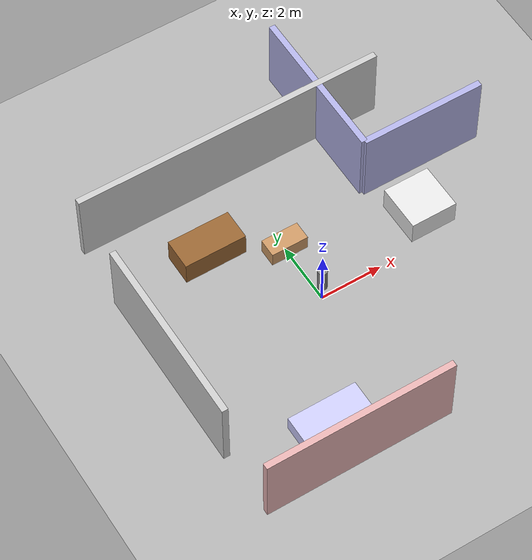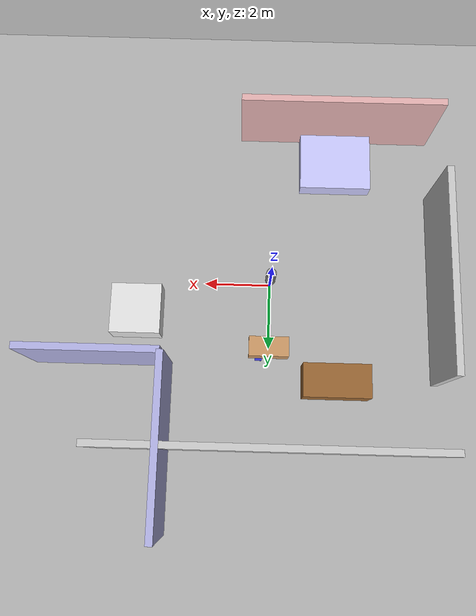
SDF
<?xml version="1.0" ?>
<sdf version="1.7">
  <world name="capstone_world">
    <!-- Include the outdoor environment -->
    <include>
      <uri>model://ground_plane</uri>
    </include>

    <include>
      <uri>model://sun</uri>
    </include>

    <!-- Add a simple house-like structure for the capstone scenario -->
    <!-- Living room area -->
    <model name="living_room_wall_1">
      <pose>0 5 0 0 0 0</pose>
      <link name="link">
        <visual name="visual">
          <geometry>
            <box>
              <size>10 0.2 2.5</size>
            </box>
          </geometry>
          <material>
            <ambient>0.8 0.8 0.8 1</ambient>
            <diffuse>0.8 0.8 0.8 1</diffuse>
          </material>
        </visual>
        <collision name="collision">
          <geometry>
            <box>
              <size>10 0.2 2.5</size>
            </box>
          </geometry>
        </collision>
        <pose>0 0 1.25 0 0 0</pose>
      </link>
    </model>

    <model name="living_room_wall_2">
      <pose>-5 0 0 0 0 1.5707</pose>
      <link name="link">
        <visual name="visual">
          <geometry>
            <box>
              <size>6 0.2 2.5</size>
            </box>
          </geometry>
          <material>
            <ambient>0.8 0.8 0.8 1</ambient>
            <diffuse>0.8 0.8 0.8 1</diffuse>
          </material>
        </visual>
        <collision name="collision">
          <geometry>
            <box>
              <size>6 0.2 2.5</size>
            </box>
          </geometry>
        </collision>
        <pose>0 0 1.25 0 0 0</pose>
      </link>
    </model>

    <!-- Kitchen area -->
    <model name="kitchen_wall_1">
      <pose>5 2.5 0 0 0 0</pose>
      <link name="link">
        <visual name="visual">
          <geometry>
            <box>
              <size>4 0.2 2.5</size>
            </box>
          </geometry>
          <material>
            <ambient>0.7 0.7 0.9 1</ambient>
            <diffuse>0.7 0.7 0.9 1</diffuse>
          </material>
        </visual>
        <collision name="collision">
          <geometry>
            <box>
              <size>4 0.2 2.5</size>
            </box>
          </geometry>
        </collision>
        <pose>0 0 1.25 0 0 0</pose>
      </link>
    </model>

    <model name="kitchen_wall_2">
      <pose>3 5 0 0 0 1.5707</pose>
      <link name="link">
        <visual name="visual">
          <geometry>
            <box>
              <size>5 0.2 2.5</size>
            </box>
          </geometry>
          <material>
            <ambient>0.7 0.7 0.9 1</ambient>
            <diffuse>0.7 0.7 0.9 1</diffuse>
          </material>
        </visual>
        <collision name="collision">
          <geometry>
            <box>
              <size>5 0.2 2.5</size>
            </box>
          </geometry>
        </collision>
        <pose>0 0 1.25 0 0 0</pose>
      </link>
    </model>

    <!-- Bedroom area -->
    <model name="bedroom_wall_1">
      <pose>-2 -5 0 0 0 0</pose>
      <link name="link">
        <visual name="visual">
          <geometry>
            <box>
              <size>6 0.2 2.5</size>
            </box>
          </geometry>
          <material>
            <ambient>0.9 0.7 0.7 1</ambient>
            <diffuse>0.9 0.7 0.7 1</diffuse>
          </material>
        </visual>
        <collision name="collision">
          <geometry>
            <box>
              <size>6 0.2 2.5</size>
            </box>
          </geometry>
        </collision>
        <pose>0 0 1.25 0 0 0</pose>
      </link>
    </model>

    <!-- Add furniture to make the environment more realistic -->
    <!-- Living room furniture -->
    <model name="sofa">
      <pose>-2 3 0 0 0 0</pose>
      <link name="link">
        <visual name="visual">
          <geometry>
            <box>
              <size>2 1 0.8</size>
            </box>
          </geometry>
          <material>
            <ambient>0.6 0.4 0.2 1</ambient>
            <diffuse>0.6 0.4 0.2 1</diffuse>
          </material>
        </visual>
        <collision name="collision">
          <geometry>
            <box>
              <size>2 1 0.8</size>
            </box>
          </geometry>
        </collision>
        <pose>0 0 0.4 0 0 0</pose>
      </link>
    </model>

    <model name="coffee_table">
      <pose>0 2 0 0 0 0</pose>
      <link name="link">
        <visual name="visual">
          <geometry>
            <box>
              <size>1.2 0.6 0.5</size>
            </box>
          </geometry>
          <material>
            <ambient>0.8 0.6 0.4 1</ambient>
            <diffuse>0.8 0.6 0.4 1</diffuse>
          </material>
        </visual>
        <collision name="collision">
          <geometry>
            <box>
              <size>1.2 0.6 0.5</size>
            </box>
          </geometry>
        </collision>
        <pose>0 0 0.25 0 0 0</pose>
      </link>
    </model>

    <!-- Kitchen furniture -->
    <model name="kitchen_table">
      <pose>4 1 0 0 0 0</pose>
      <link name="link">
        <visual name="visual">
          <geometry>
            <box>
              <size>1.5 1.5 0.8</size>
            </box>
          </geometry>
          <material>
            <ambient>0.9 0.9 0.9 1</ambient>
            <diffuse>0.9 0.9 0.9 1</diffuse>
          </material>
        </visual>
        <collision name="collision">
          <geometry>
            <box>
              <size>1.5 1.5 0.8</size>
            </box>
          </geometry>
        </collision>
        <pose>0 0 0.4 0 0 0</pose>
      </link>
    </model>

    <!-- Bedroom furniture -->
    <model name="bed">
      <pose>-2 -4 0 0 0 0</pose>
      <link name="link">
        <visual name="visual">
          <geometry>
            <box>
              <size>2.2 1.8 0.5</size>
            </box>
          </geometry>
          <material>
            <ambient>0.8 0.8 1.0 1</ambient>
            <diffuse>0.8 0.8 1.0 1</diffuse>
          </material>
        </visual>
        <collision name="collision">
          <geometry>
            <box>
              <size>2.2 1.8 0.5</size>
            </box>
          </geometry>
        </collision>
        <pose>0 0 0.25 0 0 0</pose>
      </link>
    </model>

    <!-- Add objects for the humanoid to interact with -->
    <!-- Objects in living room -->
    <model name="red_cup">
      <pose>-0.5 2.2 0 0 0 0</pose>
      <link name="link">
        <visual name="visual">
          <geometry>
            <cylinder>
              <radius>0.05</radius>
              <length>0.1</length>
            </cylinder>
          </geometry>
          <material>
            <ambient>0.8 0.1 0.1 1</ambient>
            <diffuse>0.8 0.1 0.1 1</diffuse>
          </material>
        </visual>
        <collision name="collision">
          <geometry>
            <cylinder>
              <radius>0.05</radius>
              <length>0.1</length>
            </cylinder>
          </geometry>
        </collision>
        <pose>0 0 0.05 0 0 0</pose>
      </link>
    </model>

    <model name="book">
      <pose>0.3 2.3 0 0 0 0</pose>
      <link name="link">
        <visual name="visual">
          <geometry>
            <box>
              <size>0.2 0.15 0.02</size>
            </box>
          </geometry>
          <material>
            <ambient>0.2 0.2 0.8 1</ambient>
            <diffuse>0.2 0.2 0.8 1</diffuse>
          </material>
        </visual>
        <collision name="collision">
          <geometry>
            <box>
              <size>0.2 0.15 0.02</size>
            </box>
          </geometry>
        </collision>
        <pose>0 0 0.01 0 0 0</pose>
      </link>
    </model>

    <!-- Objects in kitchen -->
    <model name="ball">
      <pose>4.2 1.2 0 0 0 0</pose>
      <link name="link">
        <visual name="visual">
          <geometry>
            <sphere>
              <radius>0.07</radius>
            </sphere>
          </geometry>
          <material>
            <ambient>0.1 0.8 0.1 1</ambient>
            <diffuse>0.1 0.8 0.1 1</diffuse>
          </material>
        </visual>
        <collision name="collision">
          <geometry>
            <sphere>
              <radius>0.07</radius>
            </sphere>
          </geometry>
        </collision>
        <pose>0 0 0.07 0 0 0</pose>
      </link>
    </model>

    <!-- Add a simple humanoid robot model -->
    <model name="simple_humanoid">
      <pose>0 0 1 0 0 0</pose>
      <link name="base_link">
        <visual name="visual">
          <geometry>
            <cylinder>
              <radius>0.15</radius>
              <length>0.8</length>
            </cylinder>
          </geometry>
          <material>
            <ambient>0.5 0.5 0.5 1</ambient>
            <diffuse>0.5 0.5 0.5 1</diffuse>
          </material>
        </visual>
        <collision name="collision">
          <geometry>
            <cylinder>
              <radius>0.15</radius>
              <length>0.8</length>
            </cylinder>
          </geometry>
        </collision>
        <inertial>
          <mass>10.0</mass>
          <inertia>
            <ixx>0.4</ixx>
            <iyy>0.4</iyy>
            <izz>0.2</izz>
          </inertia>
        </inertial>
      </link>

      <!-- Head -->
      <link name="head_link">
        <visual name="visual">
          <geometry>
            <sphere>
              <radius>0.1</radius>
            </sphere>
          </geometry>
          <material>
            <ambient>1 1 1 1</ambient>
            <diffuse>1 1 1 1</diffuse>
          </material>
        </visual>
        <collision name="collision">
          <geometry>
            <sphere>
              <radius>0.1</radius>
            </sphere>
          </geometry>
        </collision>
        <inertial>
          <mass>1.0</mass>
          <inertia>
            <ixx>0.0067</ixx>
            <iyy>0.0067</iyy>
            <izz>0.0067</izz>
          </inertia>
        </inertial>
      </link>
      <joint name="neck_joint" type="revolute">
        <parent>base_link</parent>
        <child>head_link</child>
        <axis>
          <xyz>0 0 1</xyz>
        </axis>
        <pose relative_to="base_link">0 0 0.5 0 0 0</pose>
      </joint>

      <!-- Arms -->
      <link name="left_arm_link">
        <visual name="visual">
          <geometry>
            <cylinder>
              <radius>0.05</radius>
              <length>0.6</length>
            </cylinder>
          </geometry>
          <material>
            <ambient>0.5 0.5 0.5 1</ambient>
            <diffuse>0.5 0.5 0.5 1</diffuse>
          </material>
        </visual>
        <collision name="collision">
          <geometry>
            <cylinder>
              <radius>0.05</radius>
              <length>0.6</length>
            </cylinder>
          </geometry>
        </collision>
        <inertial>
          <mass>0.5</mass>
          <inertia>
            <ixx>0.015</ixx>
            <iyy>0.015</iyy>
            <izz>0.00125</izz>
          </inertia>
        </inertial>
      </link>
      <joint name="left_shoulder_joint" type="revolute">
        <parent>base_link</parent>
        <child>left_arm_link</child>
        <axis>
          <xyz>0 1 0</xyz>
        </axis>
        <pose relative_to="base_link">0.2 0 0.2 0 0 0</pose>
      </joint>

      <link name="right_arm_link">
        <visual name="visual">
          <geometry>
            <cylinder>
              <radius>0.05</radius>
              <length>0.6</length>
            </cylinder>
          </geometry>
          <material>
            <ambient>0.5 0.5 0.5 1</ambient>
            <diffuse>0.5 0.5 0.5 1</diffuse>
          </material>
        </visual>
        <collision name="collision">
          <geometry>
            <cylinder>
              <radius>0.05</radius>
              <length>0.6</length>
            </cylinder>
          </geometry>
        </collision>
        <inertial>
          <mass>0.5</mass>
          <inertia>
            <ixx>0.015</ixx>
            <iyy>0.015</iyy>
            <izz>0.00125</izz>
          </inertia>
        </inertial>
      </link>
      <joint name="right_shoulder_joint" type="revolute">
        <parent>base_link</parent>
        <child>right_arm_link</child>
        <axis>
          <xyz>0 1 0</xyz>
        </axis>
        <pose relative_to="base_link">-0.2 0 0.2 0 0 0</pose>
      </joint>

      <!-- Define the robot as a manipulator for Gazebo -->
      <static>false</static>
    </model>

    <!-- Define coordinate frames for navigation -->
    <frame name="map_frame" attached_to="world">
      <pose>0 0 0 0 0 0</pose>
    </frame>

    <frame name="kitchen_frame" attached_to="kitchen_table">
      <pose>0 0 1.2 0 0 0</pose>
    </frame>

    <frame name="living_room_frame" attached_to="coffee_table">
      <pose>0 0 1.0 0 0 0</pose>
    </frame>

    <frame name="bedroom_frame" attached_to="bed">
      <pose>0 0 1.0 0 0 0</pose>
    </frame>

    <!-- Add lighting -->
    <light name="ambient_light" type="directional">
      <pose>0 0 10 0 0 0</pose>
      <diffuse>0.8 0.8 0.8 1</diffuse>
      <specular>0.2 0.2 0.2 1</specular>
      <attenuation>
        <range>20</range>
      </attenuation>
      <direction>-0.3 -0.3 -1</direction>
    </light>

    <!-- Add sensors for perception -->
    <model name="rgbd_camera">
      <pose>0 0 1.5 0 0 0</pose>
      <link name="link">
        <sensor name="rgbd_camera" type="rgbd_camera">
          <pose>0.1 0 0 0 0 0</pose>
          <camera>
            <horizontal_fov>1.047</horizontal_fov>
            <image>
              <width>640</width>
              <height>480</height>
            </image>
            <clip>
              <near>0.1</near>
              <far>10</far>
            </clip>
          </camera>
          <always_on>1</always_on>
          <update_rate>30</update_rate>
          <visualize>true</visualize>
        </sensor>
      </link>
    </model>

    <!-- Add a simple plane for the ground -->
    <model name="ground_plane">
      <static>true</static>
      <link name="link">
        <collision name="collision">
          <geometry>
            <plane>
              <normal>0 0 1</normal>
              <size>50 50</size>
            </plane>
          </geometry>
        </collision>
        <visual name="visual">
          <geometry>
            <plane>
              <normal>0 0 1</normal>
              <size>50 50</size>
            </plane>
          </geometry>
          <material>
            <ambient>0.7 0.7 0.7 1</ambient>
            <diffuse>0.7 0.7 0.7 1</diffuse>
          </material>
        </visual>
      </link>
    </model>
  </world>
</sdf>
